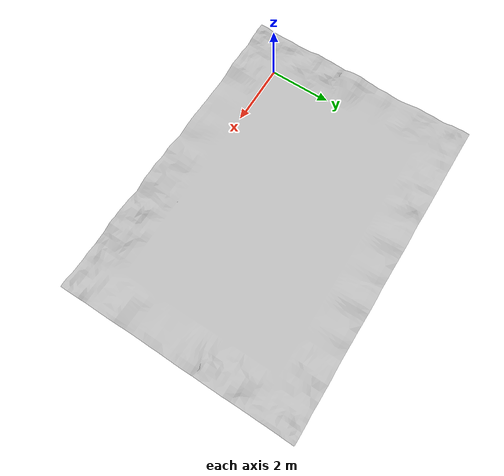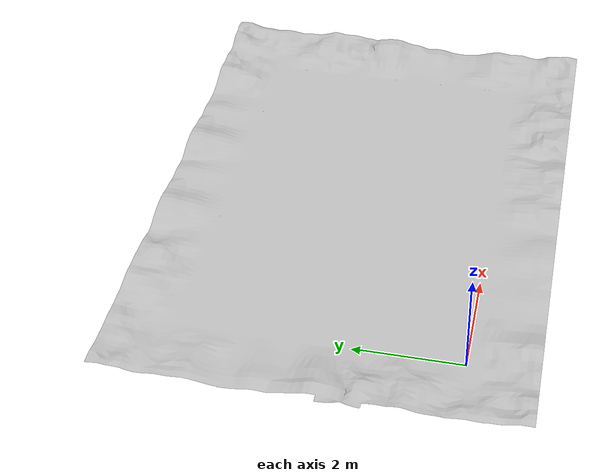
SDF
<?xml version="1.0"?>
<sdf version="1.4">
<world name="04_A-_Virtual_May19_Train_track">
<scene>
<ambient>0.5 0.5 0.5 1.0</ambient>
<shadows>0</shadows>
<sky></sky>
</scene>
<include>
<uri>model://sun</uri>
<pose>0.0 0.0 15.0 0 0 0</pose>
<cast_shadows>false</cast_shadows>
<attenuation>
<constant>0.5</constant>
<linear>0.01</linear>
<quadratic>0.0</quadratic>
<range>100</range>
</attenuation>
</include>
<light type="point" name="Light 1">
<pose>0 0 15 0 0 0</pose>
<diffuse>0.225 0.225 0.225 1</diffuse>
<specular>.1 .1 .1 1</specular>
<attenuation>
<constant>0.4</constant>
<linear>0.01</linear>
<quadratic>0.00</quadratic>
<range>50</range>
</attenuation>
<direction>0 0 -1</direction>
<cast_shadows>false</cast_shadows>
</light>
<include>
<uri>model://models/04_A-_Virtual_May19_Train_track</uri>
<pose>0 0 0 0 0 0</pose>
<name>racetrack</name>
</include>
</world>
</sdf>

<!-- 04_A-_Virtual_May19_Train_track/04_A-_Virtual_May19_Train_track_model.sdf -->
<sdf version="1.4">
<model name="04_A-_Virtual_May19_Train_track_model">
<link name="fullLink">
<collision name="collision">
<pose>0 0 0 0 0 0</pose>
<geometry>
<mesh>
<uri>model://meshes/04_A-_Virtual_May19_Train_track/04_A-_Virtual_May19_Train_track.dae</uri>
</mesh>
</geometry>
</collision>
<visual name="visual">
<pose>0 0 0 0 0 0</pose>
<geometry>
<mesh>
<uri>model://meshes/04_A-_Virtual_May19_Train_track/04_A-_Virtual_May19_Train_track.dae</uri>
</mesh>
</geometry>
</visual>
</link>
<static>1</static>
</model>
</sdf>
